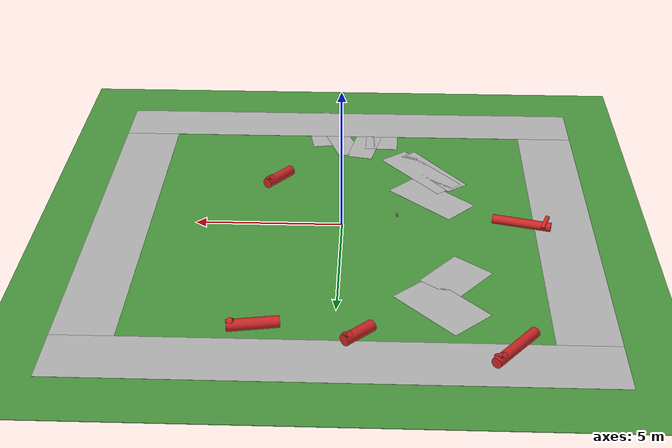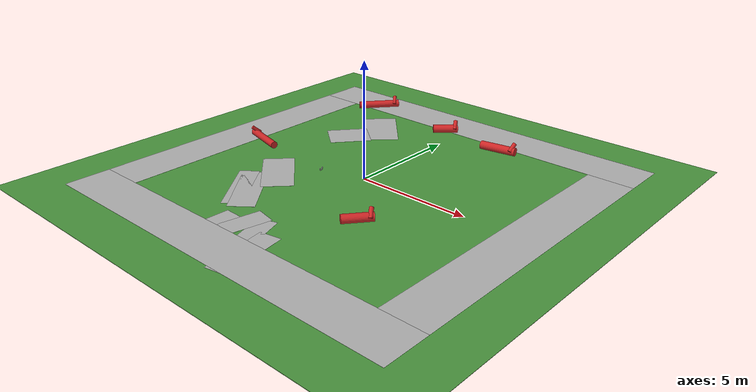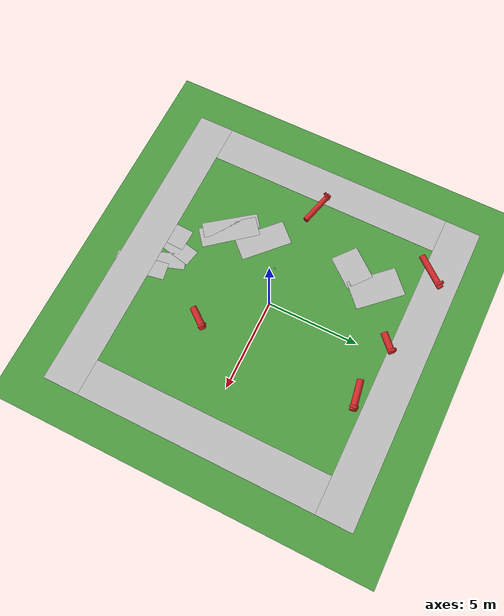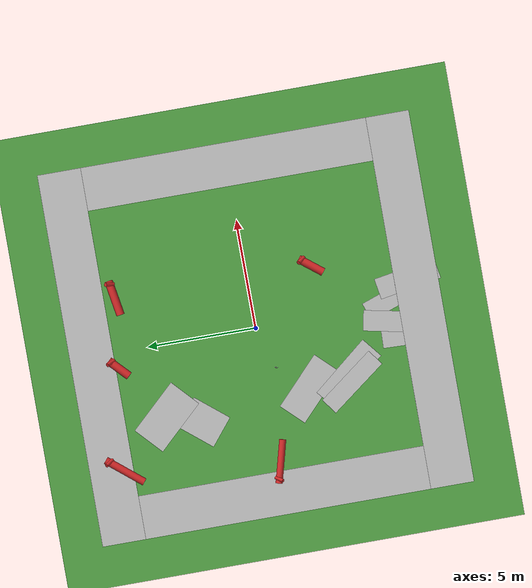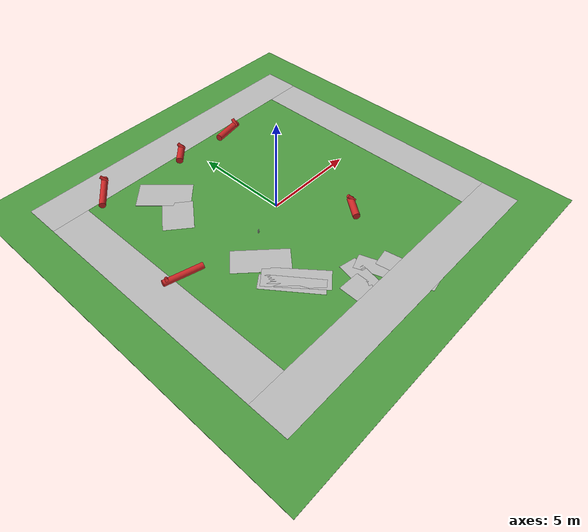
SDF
<sdf version="1.6">
 <world name="default">
  <model name="ground_cover">
   <static>true</static>
   <link name="grass">
    <pose>0 0 -0.01 0 0 0</pose>
    <collision name="grass_c"><geometry><box><size>90.0000 90.0000 0.0200</size></box></geometry></collision>
    <visual name="grass_v">
     <geometry><box><size>90.0000 90.0000 0.0200</size></box></geometry>
     <material>
      <script>
       <uri>model://bushfire/materials/scripts</uri>
       <uri>model://bushfire/materials/textures</uri>
       <name>Bushfire/DryGrass</name>
      </script>
     </material>
    </visual>
   </link>
  </model>
  <model name="firebreak_floor">
   <static>true</static>
   <link name="break_n">
    <pose>0 7.600 0.003 0 0 0</pose>
    <visual name="break_n_v">
     <geometry><box><size>17.2000 2.0000 0.0040</size></box></geometry>
     <material>
      <script>
       <uri>model://bushfire/materials/scripts</uri>
       <uri>model://bushfire/materials/textures</uri>
       <name>Bushfire/MineralEarth</name>
      </script>
     </material>
    </visual>
   </link>
   <link name="break_s">
    <pose>0 -7.600 0.003 0 0 0</pose>
    <visual name="break_s_v">
     <geometry><box><size>17.2000 2.0000 0.0040</size></box></geometry>
     <material>
      <script>
       <uri>model://bushfire/materials/scripts</uri>
       <uri>model://bushfire/materials/textures</uri>
       <name>Bushfire/MineralEarth</name>
      </script>
     </material>
    </visual>
   </link>
   <link name="break_e">
    <pose>7.600 0 0.003 0 0 0</pose>
    <visual name="break_e_v">
     <geometry><box><size>2.0000 13.2000 0.0040</size></box></geometry>
     <material>
      <script>
       <uri>model://bushfire/materials/scripts</uri>
       <uri>model://bushfire/materials/textures</uri>
       <name>Bushfire/MineralEarth</name>
      </script>
     </material>
    </visual>
   </link>
   <link name="break_w">
    <pose>-7.600 0 0.003 0 0 0</pose>
    <visual name="break_w_v">
     <geometry><box><size>2.0000 13.2000 0.0040</size></box></geometry>
     <material>
      <script>
       <uri>model://bushfire/materials/scripts</uri>
       <uri>model://bushfire/materials/textures</uri>
       <name>Bushfire/MineralEarth</name>
      </script>
     </material>
    </visual>
   </link>
  </model>
  <model name="burn_scars">
   <static>true</static>
   <link name="burn0">
    <pose>-3.1691 -3.9156 0.002 0 0 2.213</pose>
    <visual name="burn0_v">
     <geometry><box><size>3.0815 0.8501 0.0030</size></box></geometry>
     <material>
      <script>
       <uri>model://bushfire/materials/scripts</uri>
       <uri>model://bushfire/materials/textures</uri>
       <name>Bushfire/BurntGround</name>
      </script>
     </material>
    </visual>
   </link>
   <link name="burn1">
    <pose>-2.7890 -3.8300 0.002 0 0 2.252</pose>
    <visual name="burn1_v">
     <geometry><box><size>3.1953 1.1160 0.0030</size></box></geometry>
     <material>
      <script>
       <uri>model://bushfire/materials/scripts</uri>
       <uri>model://bushfire/materials/textures</uri>
       <name>Bushfire/BurntGround</name>
      </script>
     </material>
    </visual>
   </link>
   <link name="burn2">
    <pose>-3.1389 -1.9463 0.002 0 0 2.382</pose>
    <visual name="burn2_v">
     <geometry><box><size>2.8332 1.3672 0.0030</size></box></geometry>
     <material>
      <script>
       <uri>model://bushfire/materials/scripts</uri>
       <uri>model://bushfire/materials/textures</uri>
       <name>Bushfire/BurntGround</name>
      </script>
     </material>
    </visual>
   </link>
   <link name="burn3">
    <pose>1.0347 -7.2172 0.002 0 0 1.740</pose>
    <visual name="burn3_v">
     <geometry><box><size>2.8837 0.9635 0.0030</size></box></geometry>
     <material>
      <script>
       <uri>model://bushfire/materials/scripts</uri>
       <uri>model://bushfire/materials/textures</uri>
       <name>Bushfire/BurntGround</name>
      </script>
     </material>
    </visual>
   </link>
   <link name="burn4">
    <pose>-0.7810 -6.3112 0.002 0 0 1.372</pose>
    <visual name="burn4_v">
     <geometry><box><size>2.8882 0.9389 0.0030</size></box></geometry>
     <material>
      <script>
       <uri>model://bushfire/materials/scripts</uri>
       <uri>model://bushfire/materials/textures</uri>
       <name>Bushfire/BurntGround</name>
      </script>
     </material>
    </visual>
   </link>
   <link name="burn5">
    <pose>-1.3531 -6.9603 0.002 0 0 1.537</pose>
    <visual name="burn5_v">
     <geometry><box><size>2.7112 1.2011 0.0030</size></box></geometry>
     <material>
      <script>
       <uri>model://bushfire/materials/scripts</uri>
       <uri>model://bushfire/materials/textures</uri>
       <name>Bushfire/BurntGround</name>
      </script>
     </material>
    </visual>
   </link>
   <link name="burn6">
    <pose>0.3193 -6.4896 0.002 0 0 1.904</pose>
    <visual name="burn6_v">
     <geometry><box><size>2.8881 0.8707 0.0030</size></box></geometry>
     <material>
      <script>
       <uri>model://bushfire/materials/scripts</uri>
       <uri>model://bushfire/materials/textures</uri>
       <name>Bushfire/BurntGround</name>
      </script>
     </material>
    </visual>
   </link>
   <link name="burn7">
    <pose>-3.2791 4.6903 0.002 0 0 2.324</pose>
    <visual name="burn7_v">
     <geometry><box><size>2.7510 1.5981 0.0030</size></box></geometry>
     <material>
      <script>
       <uri>model://bushfire/materials/scripts</uri>
       <uri>model://bushfire/materials/textures</uri>
       <name>Bushfire/BurntGround</name>
      </script>
     </material>
    </visual>
   </link>
   <link name="burn8">
    <pose>-3.7991 3.0701 0.002 0 0 2.458</pose>
    <visual name="burn8_v">
     <geometry><box><size>1.5356 1.8801 0.0030</size></box></geometry>
     <material>
      <script>
       <uri>model://bushfire/materials/scripts</uri>
       <uri>model://bushfire/materials/textures</uri>
       <name>Bushfire/BurntGround</name>
      </script>
     </material>
    </visual>
   </link>
  </model>
  <model name="log_0">
   <static>true</static>
   <link name="log">
    <pose>-6.1624 -0.0821 0.1578 0 1.5708 2.8845</pose>
    <visual name="log_v">
     <geometry><cylinder><radius>0.1578</radius><length>2.0012</length></cylinder></geometry>
     <material>
      <script>
       <uri>model://bushfire/materials/scripts</uri>
       <uri>model://bushfire/materials/textures</uri>
       <name>Bushfire/CharredLog</name>
      </script>
     </material>
    </visual>
   </link>
   <link name="stub">
    <pose>-6.9365 0.1215 0.3178 0 0.900 4.184</pose>
    <visual name="stub_v">
     <geometry><cylinder><radius>0.0789</radius><length>0.4500</length></cylinder></geometry>
     <material>
      <script>
       <uri>model://bushfire/materials/scripts</uri>
       <uri>model://bushfire/materials/textures</uri>
       <name>Bushfire/CharredLog</name>
      </script>
     </material>
    </visual>
   </link>
  </model>
  <model name="log_1">
   <static>true</static>
   <link name="log">
    <pose>2.3828 -2.9783 0.1855 0 1.5708 0.9062</pose>
    <visual name="log_v">
     <geometry><cylinder><radius>0.1855</radius><length>1.2702</length></cylinder></geometry>
     <material>
      <script>
       <uri>model://bushfire/materials/scripts</uri>
       <uri>model://bushfire/materials/textures</uri>
       <name>Bushfire/CharredLog</name>
      </script>
     </material>
    </visual>
   </link>
   <link name="stub">
    <pose>2.6962 -2.5783 0.3455 0 0.900 2.206</pose>
    <visual name="stub_v">
     <geometry><cylinder><radius>0.0927</radius><length>0.4500</length></cylinder></geometry>
     <material>
      <script>
       <uri>model://bushfire/materials/scripts</uri>
       <uri>model://bushfire/materials/textures</uri>
       <name>Bushfire/CharredLog</name>
      </script>
     </material>
    </visual>
   </link>
  </model>
  <model name="log_2">
   <static>true</static>
   <link name="log">
    <pose>2.4774 6.0826 0.1885 0 1.5708 0.1664</pose>
    <visual name="log_v">
     <geometry><cylinder><radius>0.1885</radius><length>1.6266</length></cylinder></geometry>
     <material>
      <script>
       <uri>model://bushfire/materials/scripts</uri>
       <uri>model://bushfire/materials/textures</uri>
       <name>Bushfire/CharredLog</name>
      </script>
     </material>
    </visual>
   </link>
   <link name="stub">
    <pose>3.1191 6.1903 0.3485 0 0.900 1.466</pose>
    <visual name="stub_v">
     <geometry><cylinder><radius>0.0942</radius><length>0.4500</length></cylinder></geometry>
     <material>
      <script>
       <uri>model://bushfire/materials/scripts</uri>
       <uri>model://bushfire/materials/textures</uri>
       <name>Bushfire/CharredLog</name>
      </script>
     </material>
    </visual>
   </link>
  </model>
  <model name="log_3">
   <static>true</static>
   <link name="log">
    <pose>-5.3703 6.9774 0.1734 0 1.5708 0.8867</pose>
    <visual name="log_v">
     <geometry><cylinder><radius>0.1734</radius><length>2.0061</length></cylinder></geometry>
     <material>
      <script>
       <uri>model://bushfire/materials/scripts</uri>
       <uri>model://bushfire/materials/textures</uri>
       <name>Bushfire/CharredLog</name>
      </script>
     </material>
    </visual>
   </link>
   <link name="stub">
    <pose>-4.8632 7.5992 0.3334 0 0.900 2.187</pose>
    <visual name="stub_v">
     <geometry><cylinder><radius>0.0867</radius><length>0.4500</length></cylinder></geometry>
     <material>
      <script>
       <uri>model://bushfire/materials/scripts</uri>
       <uri>model://bushfire/materials/textures</uri>
       <name>Bushfire/CharredLog</name>
      </script>
     </material>
    </visual>
   </link>
  </model>
  <model name="log_4">
   <static>true</static>
   <link name="log">
    <pose>-0.7165 6.4400 0.1894 0 1.5708 0.7655</pose>
    <visual name="log_v">
     <geometry><cylinder><radius>0.1894</radius><length>1.1410</length></cylinder></geometry>
     <material>
      <script>
       <uri>model://bushfire/materials/scripts</uri>
       <uri>model://bushfire/materials/textures</uri>
       <name>Bushfire/CharredLog</name>
      </script>
     </material>
    </visual>
   </link>
   <link name="stub">
    <pose>-0.3874 6.7562 0.3494 0 0.900 2.065</pose>
    <visual name="stub_v">
     <geometry><cylinder><radius>0.0947</radius><length>0.4500</length></cylinder></geometry>
     <material>
      <script>
       <uri>model://bushfire/materials/scripts</uri>
       <uri>model://bushfire/materials/textures</uri>
       <name>Bushfire/CharredLog</name>
      </script>
     </material>
    </visual>
   </link>
  </model>
  <model name="tussocks">
   <static>true</static>
   <link name="tuft59_0">
    <pose>-1.9045 -0.5941 0.0861 0 0.3430 0.3051</pose>
    <visual name="tuft59_0_v">
     <geometry><cylinder><radius>0.0178</radius><length>0.1872</length></cylinder></geometry>
     <material>
      <script>
       <uri>model://bushfire/materials/scripts</uri>
       <uri>model://bushfire/materials/textures</uri>
       <name>Bushfire/Tussock</name>
      </script>
     </material>
    </visual>
   </link>
   <link name="tuft59_3">
    <pose>-1.8909 -0.5784 0.0607 0 0.3669 0.4516</pose>
    <visual name="tuft59_3_v">
     <geometry><cylinder><radius>0.0179</radius><length>0.1319</length></cylinder></geometry>
     <material>
      <script>
       <uri>model://bushfire/materials/scripts</uri>
       <uri>model://bushfire/materials/textures</uri>
       <name>Bushfire/Tussock</name>
      </script>
     </material>
    </visual>
   </link>
   <link name="tuft59_4">
    <pose>-1.9083 -0.6069 0.0546 0 0.3615 0.0821</pose>
    <visual name="tuft59_4_v">
     <geometry><cylinder><radius>0.0153</radius><length>0.1186</length></cylinder></geometry>
     <material>
      <script>
       <uri>model://bushfire/materials/scripts</uri>
       <uri>model://bushfire/materials/textures</uri>
       <name>Bushfire/Tussock</name>
      </script>
     </material>
    </visual>
   </link>
   <link name="tuft59_5">
    <pose>-1.9164 -0.5869 0.0561 0 0.1965 0.5227</pose>
    <visual name="tuft59_5_v">
     <geometry><cylinder><radius>0.0119</radius><length>0.1219</length></cylinder></geometry>
     <material>
      <script>
       <uri>model://bushfire/materials/scripts</uri>
       <uri>model://bushfire/materials/textures</uri>
       <name>Bushfire/Foliage2</name>
      </script>
     </material>
    </visual>
   </link>
   <link name="tuft59_7">
    <pose>-1.9284 -0.6641 0.0543 0 0.3761 5.2236</pose>
    <visual name="tuft59_7_v">
     <geometry><cylinder><radius>0.0133</radius><length>0.1181</length></cylinder></geometry>
     <material>
      <script>
       <uri>model://bushfire/materials/scripts</uri>
       <uri>model://bushfire/materials/textures</uri>
       <name>Bushfire/Tussock</name>
      </script>
     </material>
    </visual>
   </link>
  </model>
 </world>
</sdf>
